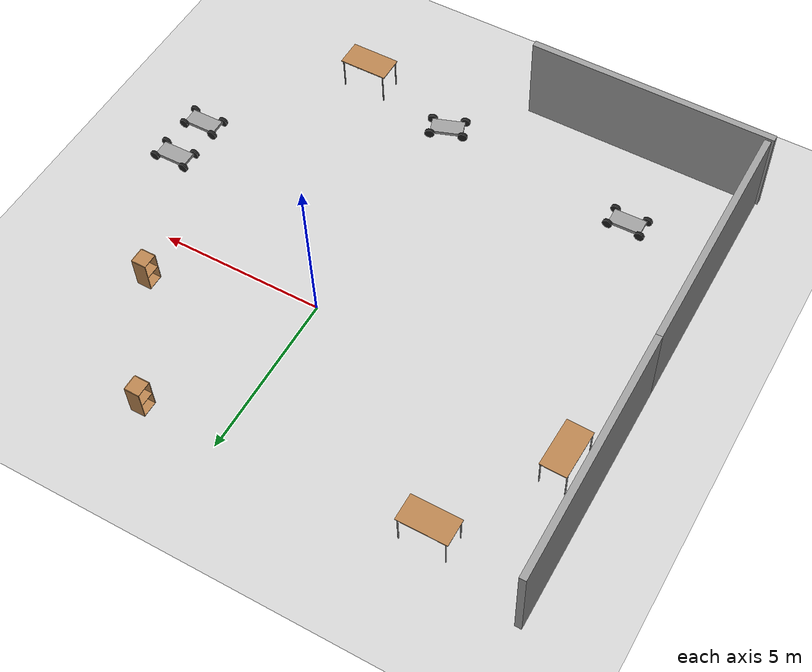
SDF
<sdf version="1.6">
 <world name="default">
  <light name="sun" type="directional">
   <pose>0 0 15 0 -0 0</pose>
   <diffuse>1 1 1 1</diffuse>
   <specular>0.1 0.1 0.1 1</specular>
   <attenuation>
    <range>1000</range>
    <constant>0.9</constant>
    <linear>0.01</linear>
    <quadratic>0.001</quadratic>
   </attenuation>
   <direction>-0.5 0.5 -1</direction>
  </light>
  <model name="ground_plane">
   <static>1</static>
   <link name="link">
    <collision name="collision">
     <geometry><plane><normal>0 0 1</normal><size>100 100</size></plane></geometry>
     <surface><friction><ode><mu>100</mu><mu2>50</mu2></ode></friction></surface>
    </collision>
    <visual name="visual">
     <transparency>1</transparency>
     <cast_shadows>0</cast_shadows>
     <geometry><plane><normal>0 0 1</normal><size>100 100</size></plane></geometry>
     <material>
      <script><uri>file://media/materials/scripts/gazebo.material</uri><name>Gazebo/Grey</name></script>
     </material>
    </visual>
   </link>
  </model>
  <gravity>0 0 -9.8</gravity>
  <magnetic_field>6e-06 2.3e-05 -4.2e-05</magnetic_field>
  <atmosphere type="adiabatic"/>
  <physics name="default_physics" default="0" type="ode">
   <max_step_size>0.001</max_step_size>
   <real_time_factor>1</real_time_factor>
   <real_time_update_rate>1000</real_time_update_rate>
  </physics>
  <scene><ambient>0.4 0.4 0.4 1</ambient><background>0.7 0.7 0.7 1</background><shadows>1</shadows></scene>
  <spherical_coordinates>
   <surface_model>EARTH_WGS84</surface_model>
   <latitude_deg>0</latitude_deg>
   <longitude_deg>0</longitude_deg>
   <elevation>0</elevation>
   <heading_deg>0</heading_deg>
  </spherical_coordinates>
  <model name="grey_wall">
   <static>1</static>
   <link name="link">
    <pose>0 0 1.4 0 -0 0</pose>
    <collision name="collision"><geometry><box><size>7.5 0.2 2.8</size></box></geometry></collision>
    <visual name="visual">
     <cast_shadows>0</cast_shadows>
     <geometry><box><size>7.5 0.2 2.8</size></box></geometry>
     <material>
      <script>
       <uri>model://grey_wall/materials/scripts</uri>
       <uri>model://grey_wall/materials/textures</uri>
       <name>vrc/grey_wall</name>
      </script>
     </material>
    </visual>
   </link>
   <pose>-9.17179 1.83756 0 0 0 -1.56705</pose>
  </model>
  <model name="grey_wall_clone">
   <static>1</static>
   <link name="link">
    <pose>0 0 1.4 0 -0 0</pose>
    <collision name="collision"><geometry><box><size>7.5 0.2 2.8</size></box></geometry></collision>
    <visual name="visual">
     <cast_shadows>0</cast_shadows>
     <geometry><box><size>7.5 0.2 2.8</size></box></geometry>
     <material>
      <script>
       <uri>model://grey_wall/materials/scripts</uri>
       <uri>model://grey_wall/materials/textures</uri>
       <name>vrc/grey_wall</name>
      </script>
     </material>
    </visual>
   </link>
   <pose>-5.53822 -9.42427 -0.01494 0 0 -0.004172</pose>
  </model>
  <model name="grey_wall_clone_clone">
   <static>1</static>
   <link name="link">
    <pose>0 0 1.4 0 -0 0</pose>
    <collision name="collision"><geometry><box><size>7.5 0.2 2.8</size></box></geometry></collision>
    <visual name="visual">
     <cast_shadows>0</cast_shadows>
     <geometry><box><size>7.5 0.2 2.8</size></box></geometry>
     <material>
      <script>
       <uri>model://grey_wall/materials/scripts</uri>
       <uri>model://grey_wall/materials/textures</uri>
       <name>vrc/grey_wall</name>
      </script>
     </material>
    </visual>
   </link>
   <pose>-9.14347 -5.47486 0 0 0 -1.56705</pose>
  </model>
  <model name="cart_front_steer">
   <link name="chassis">
    <pose>0 0 0.15 0 -0 0</pose>
    <inertial>
     <pose>0.1 0 0 0 -0 0</pose>
     <mass>10</mass>
     <inertia>
      <ixx>0.216667</ixx>
      <iyy>0.841667</iyy>
      <izz>1.04167</izz>
      <ixy>0</ixy>
      <ixz>0</ixz>
      <iyz>0</iyz>
     </inertia>
    </inertial>
    <collision name="collision"><geometry><box><size>1 0.5 0.1</size></box></geometry></collision>
    <visual name="visual">
     <geometry><box><size>1 0.5 0.1</size></box></geometry>
     <material>
      <script><uri>file://media/materials/scripts/gazebo.material</uri><name>Gazebo/Grey</name></script>
     </material>
    </visual>
   </link>
   <link name="wheel_front_left">
    <pose>0.5 0.298 0.15 -1.5708 -0.087266 0</pose>
    <inertial>
     <mass>0.5</mass>
     <inertia>
      <ixx>0.00307917</ixx>
      <iyy>0.00307917</iyy>
      <izz>0.005625</izz>
      <ixy>0</ixy>
      <ixz>0</ixz>
      <iyz>0</iyz>
     </inertia>
    </inertial>
    <collision name="collision">
     <geometry><cylinder><radius>0.15</radius><length>0.08</length></cylinder></geometry>
    </collision>
    <visual name="visual">
     <geometry><cylinder><radius>0.15</radius><length>0.08</length></cylinder></geometry>
     <material>
      <script><uri>file://media/materials/scripts/gazebo.material</uri><name>Gazebo/Black</name></script>
     </material>
    </visual>
   </link>
   <joint name="wheel_front_left_steer_spin" type="universal">
    <parent>chassis</parent>
    <child>wheel_front_left</child>
    <axis>
     <xyz>0 -1 0</xyz>
     <limit><lower>-0.610865</lower><upper>0.610865</upper></limit>
     <use_parent_model_frame>0</use_parent_model_frame>
     <dynamics><spring_reference>0</spring_reference><spring_stiffness>0</spring_stiffness></dynamics>
    </axis>
    <axis2>
     <xyz>0 0 1</xyz>
     <use_parent_model_frame>0</use_parent_model_frame>
     <dynamics><spring_reference>0</spring_reference><spring_stiffness>0</spring_stiffness></dynamics>
    </axis2>
   </joint>
   <link name="wheel_front_right">
    <pose>0.5 -0.298 0.15 -1.5708 -0.087266 0</pose>
    <inertial>
     <mass>0.5</mass>
     <inertia>
      <ixx>0.00307917</ixx>
      <iyy>0.00307917</iyy>
      <izz>0.005625</izz>
      <ixy>0</ixy>
      <ixz>0</ixz>
      <iyz>0</iyz>
     </inertia>
    </inertial>
    <collision name="collision">
     <geometry><cylinder><radius>0.15</radius><length>0.08</length></cylinder></geometry>
    </collision>
    <visual name="visual">
     <geometry><cylinder><radius>0.15</radius><length>0.08</length></cylinder></geometry>
     <material>
      <script><uri>file://media/materials/scripts/gazebo.material</uri><name>Gazebo/Black</name></script>
     </material>
    </visual>
   </link>
   <joint name="wheel_front_right_steer_spin" type="universal">
    <parent>chassis</parent>
    <child>wheel_front_right</child>
    <axis>
     <xyz>0 -1 0</xyz>
     <limit><lower>-0.610865</lower><upper>0.610865</upper></limit>
     <use_parent_model_frame>0</use_parent_model_frame>
     <dynamics><spring_reference>0</spring_reference><spring_stiffness>0</spring_stiffness></dynamics>
    </axis>
    <axis2>
     <xyz>0 0 1</xyz>
     <use_parent_model_frame>0</use_parent_model_frame>
     <dynamics><spring_reference>0</spring_reference><spring_stiffness>0</spring_stiffness></dynamics>
    </axis2>
   </joint>
   <link name="wheel_rear_left">
    <pose>-0.5 0.298 0.15 -1.5708 0 0</pose>
    <inertial>
     <mass>0.5</mass>
     <inertia>
      <ixx>0.00307917</ixx>
      <iyy>0.00307917</iyy>
      <izz>0.005625</izz>
      <ixy>0</ixy>
      <ixz>0</ixz>
      <iyz>0</iyz>
     </inertia>
    </inertial>
    <collision name="collision">
     <geometry><cylinder><radius>0.15</radius><length>0.08</length></cylinder></geometry>
    </collision>
    <visual name="visual">
     <geometry><cylinder><radius>0.15</radius><length>0.08</length></cylinder></geometry>
     <material>
      <script><uri>file://media/materials/scripts/gazebo.material</uri><name>Gazebo/Black</name></script>
     </material>
    </visual>
   </link>
   <joint name="wheel_rear_left_spin" type="revolute">
    <parent>chassis</parent>
    <child>wheel_rear_left</child>
    <axis>
     <xyz>0 0 1</xyz>
     <use_parent_model_frame>0</use_parent_model_frame>
     <limit><lower>-1e+16</lower><upper>1e+16</upper></limit>
     <dynamics><spring_reference>0</spring_reference><spring_stiffness>0</spring_stiffness></dynamics>
    </axis>
   </joint>
   <link name="wheel_rear_right">
    <pose>-0.5 -0.298 0.15 -1.5708 0 0</pose>
    <inertial>
     <mass>0.5</mass>
     <inertia>
      <ixx>0.00307917</ixx>
      <iyy>0.00307917</iyy>
      <izz>0.005625</izz>
      <ixy>0</ixy>
      <ixz>0</ixz>
      <iyz>0</iyz>
     </inertia>
    </inertial>
    <collision name="collision">
     <geometry><cylinder><radius>0.15</radius><length>0.08</length></cylinder></geometry>
    </collision>
    <visual name="visual">
     <geometry><cylinder><radius>0.15</radius><length>0.08</length></cylinder></geometry>
     <material>
      <script><uri>file://media/materials/scripts/gazebo.material</uri><name>Gazebo/Black</name></script>
     </material>
    </visual>
   </link>
   <joint name="wheel_rear_right_spin" type="revolute">
    <parent>chassis</parent>
    <child>wheel_rear_right</child>
    <axis>
     <xyz>0 0 1</xyz>
     <use_parent_model_frame>0</use_parent_model_frame>
     <limit><lower>-1e+16</lower><upper>1e+16</upper></limit>
     <dynamics><spring_reference>0</spring_reference><spring_stiffness>0</spring_stiffness></dynamics>
    </axis>
   </joint>
   <pose>-0.026956 -7.4091 0.005002 0 -1e-06 -2.7964</pose>
  </model>
  <model name="table">
   <static>1</static>
   <link name="link">
    <collision name="surface">
     <pose>0 0 1 0 -0 0</pose>
     <geometry><box><size>1.5 0.8 0.03</size></box></geometry>
     <surface><friction><ode><mu>0.6</mu><mu2>0.6</mu2></ode></friction></surface>
    </collision>
    <visual name="visual1">
     <pose>0 0 1 0 -0 0</pose>
     <geometry><box><size>1.5 0.8 0.03</size></box></geometry>
     <material>
      <script><uri>file://media/materials/scripts/gazebo.material</uri><name>Gazebo/Wood</name></script>
     </material>
    </visual>
    <collision name="front_left_leg">
     <pose>0.68 0.38 0.5 0 -0 0</pose>
     <geometry><cylinder><radius>0.02</radius><length>1</length></cylinder></geometry>
    </collision>
    <visual name="front_left_leg">
     <pose>0.68 0.38 0.5 0 -0 0</pose>
     <geometry><cylinder><radius>0.02</radius><length>1</length></cylinder></geometry>
     <material>
      <script><uri>file://media/materials/scripts/gazebo.material</uri><name>Gazebo/Grey</name></script>
     </material>
    </visual>
    <collision name="front_right_leg">
     <pose>0.68 -0.38 0.5 0 -0 0</pose>
     <geometry><cylinder><radius>0.02</radius><length>1</length></cylinder></geometry>
    </collision>
    <visual name="front_right_leg">
     <pose>0.68 -0.38 0.5 0 -0 0</pose>
     <geometry><cylinder><radius>0.02</radius><length>1</length></cylinder></geometry>
     <material>
      <script><uri>file://media/materials/scripts/gazebo.material</uri><name>Gazebo/Grey</name></script>
     </material>
    </visual>
    <collision name="back_right_leg">
     <pose>-0.68 -0.38 0.5 0 -0 0</pose>
     <geometry><cylinder><radius>0.02</radius><length>1</length></cylinder></geometry>
    </collision>
    <visual name="back_right_leg">
     <pose>-0.68 -0.38 0.5 0 -0 0</pose>
     <geometry><cylinder><radius>0.02</radius><length>1</length></cylinder></geometry>
     <material>
      <script><uri>file://media/materials/scripts/gazebo.material</uri><name>Gazebo/Grey</name></script>
     </material>
    </visual>
    <collision name="back_left_leg">
     <pose>-0.68 0.38 0.5 0 -0 0</pose>
     <geometry><cylinder><radius>0.02</radius><length>1</length></cylinder></geometry>
    </collision>
    <visual name="back_left_leg">
     <pose>-0.68 0.38 0.5 0 -0 0</pose>
     <geometry><cylinder><radius>0.02</radius><length>1</length></cylinder></geometry>
     <material>
      <script><uri>file://media/materials/scripts/gazebo.material</uri><name>Gazebo/Grey</name></script>
     </material>
    </visual>
   </link>
   <pose>2.98257 -7.93894 0 0 -0 0</pose>
  </model>
  <model name="cabinet">
   <static>1</static>
   <link name="cabinet_bottom_plate">
    <inertial>
     <pose>0 0 -1 0 -0 0</pose>
     <inertia><ixx>2.05</ixx><ixy>0</ixy><ixz>0</ixz><iyy>2.05</iyy><iyz>0</iyz><izz>2.05</izz></inertia>
     <mass>25</mass>
    </inertial>
    <collision name="cabinet_bottom_plate_geom">
     <pose>0 0 0.01 0 -0 0</pose>
     <geometry><box><size>0.45 0.45 0.02</size></box></geometry>
    </collision>
    <visual name="cabinet_bottom_plate_geom_visual">
     <pose>0 0 0.01 0 -0 0</pose>
     <geometry><box><size>0.45 0.45 0.02</size></box></geometry>
     <material>
      <script><uri>file://media/materials/scripts/gazebo.material</uri><name>Gazebo/Wood</name></script>
     </material>
    </visual>
    <collision name="cabinet_bottom_plate_geom_cabinet_back_plate">
     <pose>0.235 0 0.51 0 -0 0</pose>
     <geometry><box><size>0.02 0.45 1.02</size></box></geometry>
    </collision>
    <visual name="cabinet_bottom_plate_geom_cabinet_back_plate_visual">
     <pose>0.235 0 0.51 0 -0 0</pose>
     <geometry><box><size>0.02 0.45 1.02</size></box></geometry>
     <material>
      <script><uri>file://media/materials/scripts/gazebo.material</uri><name>Gazebo/Wood</name></script>
     </material>
    </visual>
    <collision name="cabinet_bottom_plate_geom_cabinet_left_plate">
     <pose>0 0.235 0.51 0 -0 0</pose>
     <geometry><box><size>0.45 0.02 1.02</size></box></geometry>
    </collision>
    <visual name="cabinet_bottom_plate_geom_cabinet_left_plate_visual">
     <pose>0 0.235 0.51 0 -0 0</pose>
     <geometry><box><size>0.45 0.02 1.02</size></box></geometry>
     <material>
      <script><uri>file://media/materials/scripts/gazebo.material</uri><name>Gazebo/Wood</name></script>
     </material>
    </visual>
    <collision name="cabinet_bottom_plate_geom_cabinet_middle_plate">
     <pose>0 0 0.51 0 -0 0</pose>
     <geometry><box><size>0.45 0.45 0.02</size></box></geometry>
    </collision>
    <visual name="cabinet_bottom_plate_geom_cabinet_middle_plate_visual">
     <pose>0 0 0.51 0 -0 0</pose>
     <geometry><box><size>0.45 0.45 0.02</size></box></geometry>
     <material>
      <script><uri>file://media/materials/scripts/gazebo.material</uri><name>Gazebo/Wood</name></script>
     </material>
    </visual>
    <collision name="cabinet_bottom_plate_geom_cabinet_right_plate">
     <pose>0 -0.235 0.51 0 -0 0</pose>
     <geometry><box><size>0.45 0.02 1.02</size></box></geometry>
    </collision>
    <visual name="cabinet_bottom_plate_geom_cabinet_right_plate_visual">
     <pose>0 -0.235 0.51 0 -0 0</pose>
     <geometry><box><size>0.45 0.02 1.02</size></box></geometry>
     <material>
      <script><uri>file://media/materials/scripts/gazebo.material</uri><name>Gazebo/Wood</name></script>
     </material>
    </visual>
    <collision name="cabinet_bottom_plate_geom_cabinet_top_plate">
     <pose>0 0 1.01 0 -0 0</pose>
     <geometry><box><size>0.45 0.45 0.02</size></box></geometry>
    </collision>
    <visual name="cabinet_bottom_plate_geom_cabinet_top_plate_visual">
     <pose>0 0 1.01 0 -0 0</pose>
     <geometry><box><size>0.45 0.45 0.02</size></box></geometry>
     <material>
      <script><uri>file://media/materials/scripts/gazebo.material</uri><name>Gazebo/Wood</name></script>
     </material>
    </visual>
   </link>
   <pose>2.34014 4.90439 0 0 -0 0</pose>
  </model>
  <model name="cart_front_steer_0">
   <link name="chassis">
    <pose>0 0 0.15 0 -0 0</pose>
    <inertial>
     <pose>0.1 0 0 0 -0 0</pose>
     <mass>10</mass>
     <inertia>
      <ixx>0.216667</ixx>
      <iyy>0.841667</iyy>
      <izz>1.04167</izz>
      <ixy>0</ixy>
      <ixz>0</ixz>
      <iyz>0</iyz>
     </inertia>
    </inertial>
    <collision name="collision"><geometry><box><size>1 0.5 0.1</size></box></geometry></collision>
    <visual name="visual">
     <geometry><box><size>1 0.5 0.1</size></box></geometry>
     <material>
      <script><uri>file://media/materials/scripts/gazebo.material</uri><name>Gazebo/Grey</name></script>
     </material>
    </visual>
   </link>
   <link name="wheel_front_left">
    <pose>0.5 0.298 0.15 -1.5708 -0.087266 0</pose>
    <inertial>
     <mass>0.5</mass>
     <inertia>
      <ixx>0.00307917</ixx>
      <iyy>0.00307917</iyy>
      <izz>0.005625</izz>
      <ixy>0</ixy>
      <ixz>0</ixz>
      <iyz>0</iyz>
     </inertia>
    </inertial>
    <collision name="collision">
     <geometry><cylinder><radius>0.15</radius><length>0.08</length></cylinder></geometry>
    </collision>
    <visual name="visual">
     <geometry><cylinder><radius>0.15</radius><length>0.08</length></cylinder></geometry>
     <material>
      <script><uri>file://media/materials/scripts/gazebo.material</uri><name>Gazebo/Black</name></script>
     </material>
    </visual>
   </link>
   <joint name="wheel_front_left_steer_spin" type="universal">
    <parent>chassis</parent>
    <child>wheel_front_left</child>
    <axis>
     <xyz>0 -1 0</xyz>
     <limit><lower>-0.610865</lower><upper>0.610865</upper></limit>
     <use_parent_model_frame>0</use_parent_model_frame>
     <dynamics><spring_reference>0</spring_reference><spring_stiffness>0</spring_stiffness></dynamics>
    </axis>
    <axis2>
     <xyz>0 0 1</xyz>
     <use_parent_model_frame>0</use_parent_model_frame>
     <dynamics><spring_reference>0</spring_reference><spring_stiffness>0</spring_stiffness></dynamics>
    </axis2>
   </joint>
   <link name="wheel_front_right">
    <pose>0.5 -0.298 0.15 -1.5708 -0.087266 0</pose>
    <inertial>
     <mass>0.5</mass>
     <inertia>
      <ixx>0.00307917</ixx>
      <iyy>0.00307917</iyy>
      <izz>0.005625</izz>
      <ixy>0</ixy>
      <ixz>0</ixz>
      <iyz>0</iyz>
     </inertia>
    </inertial>
    <collision name="collision">
     <geometry><cylinder><radius>0.15</radius><length>0.08</length></cylinder></geometry>
    </collision>
    <visual name="visual">
     <geometry><cylinder><radius>0.15</radius><length>0.08</length></cylinder></geometry>
     <material>
      <script><uri>file://media/materials/scripts/gazebo.material</uri><name>Gazebo/Black</name></script>
     </material>
    </visual>
   </link>
   <joint name="wheel_front_right_steer_spin" type="universal">
    <parent>chassis</parent>
    <child>wheel_front_right</child>
    <axis>
     <xyz>0 -1 0</xyz>
     <limit><lower>-0.610865</lower><upper>0.610865</upper></limit>
     <use_parent_model_frame>0</use_parent_model_frame>
     <dynamics><spring_reference>0</spring_reference><spring_stiffness>0</spring_stiffness></dynamics>
    </axis>
    <axis2>
     <xyz>0 0 1</xyz>
     <use_parent_model_frame>0</use_parent_model_frame>
     <dynamics><spring_reference>0</spring_reference><spring_stiffness>0</spring_stiffness></dynamics>
    </axis2>
   </joint>
   <link name="wheel_rear_left">
    <pose>-0.5 0.298 0.15 -1.5708 0 0</pose>
    <inertial>
     <mass>0.5</mass>
     <inertia>
      <ixx>0.00307917</ixx>
      <iyy>0.00307917</iyy>
      <izz>0.005625</izz>
      <ixy>0</ixy>
      <ixz>0</ixz>
      <iyz>0</iyz>
     </inertia>
    </inertial>
    <collision name="collision">
     <geometry><cylinder><radius>0.15</radius><length>0.08</length></cylinder></geometry>
    </collision>
    <visual name="visual">
     <geometry><cylinder><radius>0.15</radius><length>0.08</length></cylinder></geometry>
     <material>
      <script><uri>file://media/materials/scripts/gazebo.material</uri><name>Gazebo/Black</name></script>
     </material>
    </visual>
   </link>
   <joint name="wheel_rear_left_spin" type="revolute">
    <parent>chassis</parent>
    <child>wheel_rear_left</child>
    <axis>
     <xyz>0 0 1</xyz>
     <use_parent_model_frame>0</use_parent_model_frame>
     <limit><lower>-1e+16</lower><upper>1e+16</upper></limit>
     <dynamics><spring_reference>0</spring_reference><spring_stiffness>0</spring_stiffness></dynamics>
    </axis>
   </joint>
   <link name="wheel_rear_right">
    <pose>-0.5 -0.298 0.15 -1.5708 0 0</pose>
    <inertial>
     <mass>0.5</mass>
     <inertia>
      <ixx>0.00307917</ixx>
      <iyy>0.00307917</iyy>
      <izz>0.005625</izz>
      <ixy>0</ixy>
      <ixz>0</ixz>
      <iyz>0</iyz>
     </inertia>
    </inertial>
    <collision name="collision">
     <geometry><cylinder><radius>0.15</radius><length>0.08</length></cylinder></geometry>
    </collision>
    <visual name="visual">
     <geometry><cylinder><radius>0.15</radius><length>0.08</length></cylinder></geometry>
     <material>
      <script><uri>file://media/materials/scripts/gazebo.material</uri><name>Gazebo/Black</name></script>
     </material>
    </visual>
   </link>
   <joint name="wheel_rear_right_spin" type="revolute">
    <parent>chassis</parent>
    <child>wheel_rear_right</child>
    <axis>
     <xyz>0 0 1</xyz>
     <use_parent_model_frame>0</use_parent_model_frame>
     <limit><lower>-1e+16</lower><upper>1e+16</upper></limit>
     <dynamics><spring_reference>0</spring_reference><spring_stiffness>0</spring_stiffness></dynamics>
    </axis>
   </joint>
   <pose>-6.30007 -6.75678 0.004998 1.4e-05 -1e-06 0.020756</pose>
  </model>
  <model name="table_0">
   <static>1</static>
   <link name="link">
    <collision name="surface">
     <pose>0 0 1 0 -0 0</pose>
     <geometry><box><size>1.5 0.8 0.03</size></box></geometry>
     <surface><friction><ode><mu>0.6</mu><mu2>0.6</mu2></ode></friction></surface>
    </collision>
    <visual name="visual1">
     <pose>0 0 1 0 -0 0</pose>
     <geometry><box><size>1.5 0.8 0.03</size></box></geometry>
     <material>
      <script><uri>file://media/materials/scripts/gazebo.material</uri><name>Gazebo/Wood</name></script>
     </material>
    </visual>
    <collision name="front_left_leg">
     <pose>0.68 0.38 0.5 0 -0 0</pose>
     <geometry><cylinder><radius>0.02</radius><length>1</length></cylinder></geometry>
    </collision>
    <visual name="front_left_leg">
     <pose>0.68 0.38 0.5 0 -0 0</pose>
     <geometry><cylinder><radius>0.02</radius><length>1</length></cylinder></geometry>
     <material>
      <script><uri>file://media/materials/scripts/gazebo.material</uri><name>Gazebo/Grey</name></script>
     </material>
    </visual>
    <collision name="front_right_leg">
     <pose>0.68 -0.38 0.5 0 -0 0</pose>
     <geometry><cylinder><radius>0.02</radius><length>1</length></cylinder></geometry>
    </collision>
    <visual name="front_right_leg">
     <pose>0.68 -0.38 0.5 0 -0 0</pose>
     <geometry><cylinder><radius>0.02</radius><length>1</length></cylinder></geometry>
     <material>
      <script><uri>file://media/materials/scripts/gazebo.material</uri><name>Gazebo/Grey</name></script>
     </material>
    </visual>
    <collision name="back_right_leg">
     <pose>-0.68 -0.38 0.5 0 -0 0</pose>
     <geometry><cylinder><radius>0.02</radius><length>1</length></cylinder></geometry>
    </collision>
    <visual name="back_right_leg">
     <pose>-0.68 -0.38 0.5 0 -0 0</pose>
     <geometry><cylinder><radius>0.02</radius><length>1</length></cylinder></geometry>
     <material>
      <script><uri>file://media/materials/scripts/gazebo.material</uri><name>Gazebo/Grey</name></script>
     </material>
    </visual>
    <collision name="back_left_leg">
     <pose>-0.68 0.38 0.5 0 -0 0</pose>
     <geometry><cylinder><radius>0.02</radius><length>1</length></cylinder></geometry>
    </collision>
    <visual name="back_left_leg">
     <pose>-0.68 0.38 0.5 0 -0 0</pose>
     <geometry><cylinder><radius>0.02</radius><length>1</length></cylinder></geometry>
     <material>
      <script><uri>file://media/materials/scripts/gazebo.material</uri><name>Gazebo/Grey</name></script>
     </material>
    </visual>
   </link>
   <pose>-8.22277 1.14779 0 0 0 -1.59718</pose>
  </model>
  <model name="cabinet_0">
   <static>1</static>
   <link name="cabinet_bottom_plate">
    <inertial>
     <pose>0 0 -1 0 -0 0</pose>
     <inertia><ixx>2.05</ixx><ixy>0</ixy><ixz>0</ixz><iyy>2.05</iyy><iyz>0</iyz><izz>2.05</izz></inertia>
     <mass>25</mass>
    </inertial>
    <collision name="cabinet_bottom_plate_geom">
     <pose>0 0 0.01 0 -0 0</pose>
     <geometry><box><size>0.45 0.45 0.02</size></box></geometry>
    </collision>
    <visual name="cabinet_bottom_plate_geom_visual">
     <pose>0 0 0.01 0 -0 0</pose>
     <geometry><box><size>0.45 0.45 0.02</size></box></geometry>
     <material>
      <script><uri>file://media/materials/scripts/gazebo.material</uri><name>Gazebo/Wood</name></script>
     </material>
    </visual>
    <collision name="cabinet_bottom_plate_geom_cabinet_back_plate">
     <pose>0.235 0 0.51 0 -0 0</pose>
     <geometry><box><size>0.02 0.45 1.02</size></box></geometry>
    </collision>
    <visual name="cabinet_bottom_plate_geom_cabinet_back_plate_visual">
     <pose>0.235 0 0.51 0 -0 0</pose>
     <geometry><box><size>0.02 0.45 1.02</size></box></geometry>
     <material>
      <script><uri>file://media/materials/scripts/gazebo.material</uri><name>Gazebo/Wood</name></script>
     </material>
    </visual>
    <collision name="cabinet_bottom_plate_geom_cabinet_left_plate">
     <pose>0 0.235 0.51 0 -0 0</pose>
     <geometry><box><size>0.45 0.02 1.02</size></box></geometry>
    </collision>
    <visual name="cabinet_bottom_plate_geom_cabinet_left_plate_visual">
     <pose>0 0.235 0.51 0 -0 0</pose>
     <geometry><box><size>0.45 0.02 1.02</size></box></geometry>
     <material>
      <script><uri>file://media/materials/scripts/gazebo.material</uri><name>Gazebo/Wood</name></script>
     </material>
    </visual>
    <collision name="cabinet_bottom_plate_geom_cabinet_middle_plate">
     <pose>0 0 0.51 0 -0 0</pose>
     <geometry><box><size>0.45 0.45 0.02</size></box></geometry>
    </collision>
    <visual name="cabinet_bottom_plate_geom_cabinet_middle_plate_visual">
     <pose>0 0 0.51 0 -0 0</pose>
     <geometry><box><size>0.45 0.45 0.02</size></box></geometry>
     <material>
      <script><uri>file://media/materials/scripts/gazebo.material</uri><name>Gazebo/Wood</name></script>
     </material>
    </visual>
    <collision name="cabinet_bottom_plate_geom_cabinet_right_plate">
     <pose>0 -0.235 0.51 0 -0 0</pose>
     <geometry><box><size>0.45 0.02 1.02</size></box></geometry>
    </collision>
    <visual name="cabinet_bottom_plate_geom_cabinet_right_plate_visual">
     <pose>0 -0.235 0.51 0 -0 0</pose>
     <geometry><box><size>0.45 0.02 1.02</size></box></geometry>
     <material>
      <script><uri>file://media/materials/scripts/gazebo.material</uri><name>Gazebo/Wood</name></script>
     </material>
    </visual>
    <collision name="cabinet_bottom_plate_geom_cabinet_top_plate">
     <pose>0 0 1.01 0 -0 0</pose>
     <geometry><box><size>0.45 0.45 0.02</size></box></geometry>
    </collision>
    <visual name="cabinet_bottom_plate_geom_cabinet_top_plate_visual">
     <pose>0 0 1.01 0 -0 0</pose>
     <geometry><box><size>0.45 0.45 0.02</size></box></geometry>
     <material>
      <script><uri>file://media/materials/scripts/gazebo.material</uri><name>Gazebo/Wood</name></script>
     </material>
    </visual>
   </link>
   <pose>4.60855 1.46945 0 0 -0 0</pose>
  </model>
  <model name="cart_front_steer_1">
   <link name="chassis">
    <pose>0 0 0.15 0 -0 0</pose>
    <inertial>
     <pose>0.1 0 0 0 -0 0</pose>
     <mass>10</mass>
     <inertia>
      <ixx>0.216667</ixx>
      <iyy>0.841667</iyy>
      <izz>1.04167</izz>
      <ixy>0</ixy>
      <ixz>0</ixz>
      <iyz>0</iyz>
     </inertia>
    </inertial>
    <collision name="collision"><geometry><box><size>1 0.5 0.1</size></box></geometry></collision>
    <visual name="visual">
     <geometry><box><size>1 0.5 0.1</size></box></geometry>
     <material>
      <script><uri>file://media/materials/scripts/gazebo.material</uri><name>Gazebo/Grey</name></script>
     </material>
    </visual>
   </link>
   <link name="wheel_front_left">
    <pose>0.5 0.298 0.15 -1.5708 -0.087266 0</pose>
    <inertial>
     <mass>0.5</mass>
     <inertia>
      <ixx>0.00307917</ixx>
      <iyy>0.00307917</iyy>
      <izz>0.005625</izz>
      <ixy>0</ixy>
      <ixz>0</ixz>
      <iyz>0</iyz>
     </inertia>
    </inertial>
    <collision name="collision">
     <geometry><cylinder><radius>0.15</radius><length>0.08</length></cylinder></geometry>
    </collision>
    <visual name="visual">
     <geometry><cylinder><radius>0.15</radius><length>0.08</length></cylinder></geometry>
     <material>
      <script><uri>file://media/materials/scripts/gazebo.material</uri><name>Gazebo/Black</name></script>
     </material>
    </visual>
   </link>
   <joint name="wheel_front_left_steer_spin" type="universal">
    <parent>chassis</parent>
    <child>wheel_front_left</child>
    <axis>
     <xyz>0 -1 0</xyz>
     <limit><lower>-0.610865</lower><upper>0.610865</upper></limit>
     <use_parent_model_frame>0</use_parent_model_frame>
     <dynamics><spring_reference>0</spring_reference><spring_stiffness>0</spring_stiffness></dynamics>
    </axis>
    <axis2>
     <xyz>0 0 1</xyz>
     <use_parent_model_frame>0</use_parent_model_frame>
     <dynamics><spring_reference>0</spring_reference><spring_stiffness>0</spring_stiffness></dynamics>
    </axis2>
   </joint>
   <link name="wheel_front_right">
    <pose>0.5 -0.298 0.15 -1.5708 -0.087266 0</pose>
    <inertial>
     <mass>0.5</mass>
     <inertia>
      <ixx>0.00307917</ixx>
      <iyy>0.00307917</iyy>
      <izz>0.005625</izz>
      <ixy>0</ixy>
      <ixz>0</ixz>
      <iyz>0</iyz>
     </inertia>
    </inertial>
    <collision name="collision">
     <geometry><cylinder><radius>0.15</radius><length>0.08</length></cylinder></geometry>
    </collision>
    <visual name="visual">
     <geometry><cylinder><radius>0.15</radius><length>0.08</length></cylinder></geometry>
     <material>
      <script><uri>file://media/materials/scripts/gazebo.material</uri><name>Gazebo/Black</name></script>
     </material>
    </visual>
   </link>
   <joint name="wheel_front_right_steer_spin" type="universal">
    <parent>chassis</parent>
    <child>wheel_front_right</child>
    <axis>
     <xyz>0 -1 0</xyz>
     <limit><lower>-0.610865</lower><upper>0.610865</upper></limit>
     <use_parent_model_frame>0</use_parent_model_frame>
     <dynamics><spring_reference>0</spring_reference><spring_stiffness>0</spring_stiffness></dynamics>
    </axis>
    <axis2>
     <xyz>0 0 1</xyz>
     <use_parent_model_frame>0</use_parent_model_frame>
     <dynamics><spring_reference>0</spring_reference><spring_stiffness>0</spring_stiffness></dynamics>
    </axis2>
   </joint>
   <link name="wheel_rear_left">
    <pose>-0.5 0.298 0.15 -1.5708 0 0</pose>
    <inertial>
     <mass>0.5</mass>
     <inertia>
      <ixx>0.00307917</ixx>
      <iyy>0.00307917</iyy>
      <izz>0.005625</izz>
      <ixy>0</ixy>
      <ixz>0</ixz>
      <iyz>0</iyz>
     </inertia>
    </inertial>
    <collision name="collision">
     <geometry><cylinder><radius>0.15</radius><length>0.08</length></cylinder></geometry>
    </collision>
    <visual name="visual">
     <geometry><cylinder><radius>0.15</radius><length>0.08</length></cylinder></geometry>
     <material>
      <script><uri>file://media/materials/scripts/gazebo.material</uri><name>Gazebo/Black</name></script>
     </material>
    </visual>
   </link>
   <joint name="wheel_rear_left_spin" type="revolute">
    <parent>chassis</parent>
    <child>wheel_rear_left</child>
    <axis>
     <xyz>0 0 1</xyz>
     <use_parent_model_frame>0</use_parent_model_frame>
     <limit><lower>-1e+16</lower><upper>1e+16</upper></limit>
     <dynamics><spring_reference>0</spring_reference><spring_stiffness>0</spring_stiffness></dynamics>
    </axis>
   </joint>
   <link name="wheel_rear_right">
    <pose>-0.5 -0.298 0.15 -1.5708 0 0</pose>
    <inertial>
     <mass>0.5</mass>
     <inertia>
      <ixx>0.00307917</ixx>
      <iyy>0.00307917</iyy>
      <izz>0.005625</izz>
      <ixy>0</ixy>
      <ixz>0</ixz>
      <iyz>0</iyz>
     </inertia>
    </inertial>
    <collision name="collision">
     <geometry><cylinder><radius>0.15</radius><length>0.08</length></cylinder></geometry>
    </collision>
    <visual name="visual">
     <geometry><cylinder><radius>0.15</radius><length>0.08</length></cylinder></geometry>
     <material>
      <script><uri>file://media/materials/scripts/gazebo.material</uri><name>Gazebo/Black</name></script>
     </material>
    </visual>
   </link>
   <joint name="wheel_rear_right_spin" type="revolute">
    <parent>chassis</parent>
    <child>wheel_rear_right</child>
    <axis>
     <xyz>0 0 1</xyz>
     <use_parent_model_frame>0</use_parent_model_frame>
     <limit><lower>-1e+16</lower><upper>1e+16</upper></limit>
     <dynamics><spring_reference>0</spring_reference><spring_stiffness>0</spring_stiffness></dynamics>
    </axis>
   </joint>
   <pose>6.54935 -2.56384 0.004992 -2.7e-05 -0 0.010456</pose>
  </model>
  <model name="cart_front_steer_2">
   <link name="chassis">
    <pose>0 0 0.15 0 -0 0</pose>
    <inertial>
     <pose>0.1 0 0 0 -0 0</pose>
     <mass>10</mass>
     <inertia>
      <ixx>0.216667</ixx>
      <iyy>0.841667</iyy>
      <izz>1.04167</izz>
      <ixy>0</ixy>
      <ixz>0</ixz>
      <iyz>0</iyz>
     </inertia>
    </inertial>
    <collision name="collision"><geometry><box><size>1 0.5 0.1</size></box></geometry></collision>
    <visual name="visual">
     <geometry><box><size>1 0.5 0.1</size></box></geometry>
     <material>
      <script><uri>file://media/materials/scripts/gazebo.material</uri><name>Gazebo/Grey</name></script>
     </material>
    </visual>
   </link>
   <link name="wheel_front_left">
    <pose>0.5 0.298 0.15 -1.5708 -0.087266 0</pose>
    <inertial>
     <mass>0.5</mass>
     <inertia>
      <ixx>0.00307917</ixx>
      <iyy>0.00307917</iyy>
      <izz>0.005625</izz>
      <ixy>0</ixy>
      <ixz>0</ixz>
      <iyz>0</iyz>
     </inertia>
    </inertial>
    <collision name="collision">
     <geometry><cylinder><radius>0.15</radius><length>0.08</length></cylinder></geometry>
    </collision>
    <visual name="visual">
     <geometry><cylinder><radius>0.15</radius><length>0.08</length></cylinder></geometry>
     <material>
      <script><uri>file://media/materials/scripts/gazebo.material</uri><name>Gazebo/Black</name></script>
     </material>
    </visual>
   </link>
   <joint name="wheel_front_left_steer_spin" type="universal">
    <parent>chassis</parent>
    <child>wheel_front_left</child>
    <axis>
     <xyz>0 -1 0</xyz>
     <limit><lower>-0.610865</lower><upper>0.610865</upper></limit>
     <use_parent_model_frame>0</use_parent_model_frame>
     <dynamics><spring_reference>0</spring_reference><spring_stiffness>0</spring_stiffness></dynamics>
    </axis>
    <axis2>
     <xyz>0 0 1</xyz>
     <use_parent_model_frame>0</use_parent_model_frame>
     <dynamics><spring_reference>0</spring_reference><spring_stiffness>0</spring_stiffness></dynamics>
    </axis2>
   </joint>
   <link name="wheel_front_right">
    <pose>0.5 -0.298 0.15 -1.5708 -0.087266 0</pose>
    <inertial>
     <mass>0.5</mass>
     <inertia>
      <ixx>0.00307917</ixx>
      <iyy>0.00307917</iyy>
      <izz>0.005625</izz>
      <ixy>0</ixy>
      <ixz>0</ixz>
      <iyz>0</iyz>
     </inertia>
    </inertial>
    <collision name="collision">
     <geometry><cylinder><radius>0.15</radius><length>0.08</length></cylinder></geometry>
    </collision>
    <visual name="visual">
     <geometry><cylinder><radius>0.15</radius><length>0.08</length></cylinder></geometry>
     <material>
      <script><uri>file://media/materials/scripts/gazebo.material</uri><name>Gazebo/Black</name></script>
     </material>
    </visual>
   </link>
   <joint name="wheel_front_right_steer_spin" type="universal">
    <parent>chassis</parent>
    <child>wheel_front_right</child>
    <axis>
     <xyz>0 -1 0</xyz>
     <limit><lower>-0.610865</lower><upper>0.610865</upper></limit>
     <use_parent_model_frame>0</use_parent_model_frame>
     <dynamics><spring_reference>0</spring_reference><spring_stiffness>0</spring_stiffness></dynamics>
    </axis>
    <axis2>
     <xyz>0 0 1</xyz>
     <use_parent_model_frame>0</use_parent_model_frame>
     <dynamics><spring_reference>0</spring_reference><spring_stiffness>0</spring_stiffness></dynamics>
    </axis2>
   </joint>
   <link name="wheel_rear_left">
    <pose>-0.5 0.298 0.15 -1.5708 0 0</pose>
    <inertial>
     <mass>0.5</mass>
     <inertia>
      <ixx>0.00307917</ixx>
      <iyy>0.00307917</iyy>
      <izz>0.005625</izz>
      <ixy>0</ixy>
      <ixz>0</ixz>
      <iyz>0</iyz>
     </inertia>
    </inertial>
    <collision name="collision">
     <geometry><cylinder><radius>0.15</radius><length>0.08</length></cylinder></geometry>
    </collision>
    <visual name="visual">
     <geometry><cylinder><radius>0.15</radius><length>0.08</length></cylinder></geometry>
     <material>
      <script><uri>file://media/materials/scripts/gazebo.material</uri><name>Gazebo/Black</name></script>
     </material>
    </visual>
   </link>
   <joint name="wheel_rear_left_spin" type="revolute">
    <parent>chassis</parent>
    <child>wheel_rear_left</child>
    <axis>
     <xyz>0 0 1</xyz>
     <use_parent_model_frame>0</use_parent_model_frame>
     <limit><lower>-1e+16</lower><upper>1e+16</upper></limit>
     <dynamics><spring_reference>0</spring_reference><spring_stiffness>0</spring_stiffness></dynamics>
    </axis>
   </joint>
   <link name="wheel_rear_right">
    <pose>-0.5 -0.298 0.15 -1.5708 0 0</pose>
    <inertial>
     <mass>0.5</mass>
     <inertia>
      <ixx>0.00307917</ixx>
      <iyy>0.00307917</iyy>
      <izz>0.005625</izz>
      <ixy>0</ixy>
      <ixz>0</ixz>
      <iyz>0</iyz>
     </inertia>
    </inertial>
    <collision name="collision">
     <geometry><cylinder><radius>0.15</radius><length>0.08</length></cylinder></geometry>
    </collision>
    <visual name="visual">
     <geometry><cylinder><radius>0.15</radius><length>0.08</length></cylinder></geometry>
     <material>
      <script><uri>file://media/materials/scripts/gazebo.material</uri><name>Gazebo/Black</name></script>
     </material>
    </visual>
   </link>
   <joint name="wheel_rear_right_spin" type="revolute">
    <parent>chassis</parent>
    <child>wheel_rear_right</child>
    <axis>
     <xyz>0 0 1</xyz>
     <use_parent_model_frame>0</use_parent_model_frame>
     <limit><lower>-1e+16</lower><upper>1e+16</upper></limit>
     <dynamics><spring_reference>0</spring_reference><spring_stiffness>0</spring_stiffness></dynamics>
    </axis>
   </joint>
   <pose>6.51806 -4.0284 0.004992 -2.6e-05 -0 0.009452</pose>
  </model>
  <model name="table_1">
   <static>1</static>
   <link name="link">
    <collision name="surface">
     <pose>0 0 1 0 -0 0</pose>
     <geometry><box><size>1.5 0.8 0.03</size></box></geometry>
     <surface><friction><ode><mu>0.6</mu><mu2>0.6</mu2></ode></friction></surface>
    </collision>
    <visual name="visual1">
     <pose>0 0 1 0 -0 0</pose>
     <geometry><box><size>1.5 0.8 0.03</size></box></geometry>
     <material>
      <script><uri>file://media/materials/scripts/gazebo.material</uri><name>Gazebo/Wood</name></script>
     </material>
    </visual>
    <collision name="front_left_leg">
     <pose>0.68 0.38 0.5 0 -0 0</pose>
     <geometry><cylinder><radius>0.02</radius><length>1</length></cylinder></geometry>
    </collision>
    <visual name="front_left_leg">
     <pose>0.68 0.38 0.5 0 -0 0</pose>
     <geometry><cylinder><radius>0.02</radius><length>1</length></cylinder></geometry>
     <material>
      <script><uri>file://media/materials/scripts/gazebo.material</uri><name>Gazebo/Grey</name></script>
     </material>
    </visual>
    <collision name="front_right_leg">
     <pose>0.68 -0.38 0.5 0 -0 0</pose>
     <geometry><cylinder><radius>0.02</radius><length>1</length></cylinder></geometry>
    </collision>
    <visual name="front_right_leg">
     <pose>0.68 -0.38 0.5 0 -0 0</pose>
     <geometry><cylinder><radius>0.02</radius><length>1</length></cylinder></geometry>
     <material>
      <script><uri>file://media/materials/scripts/gazebo.material</uri><name>Gazebo/Grey</name></script>
     </material>
    </visual>
    <collision name="back_right_leg">
     <pose>-0.68 -0.38 0.5 0 -0 0</pose>
     <geometry><cylinder><radius>0.02</radius><length>1</length></cylinder></geometry>
    </collision>
    <visual name="back_right_leg">
     <pose>-0.68 -0.38 0.5 0 -0 0</pose>
     <geometry><cylinder><radius>0.02</radius><length>1</length></cylinder></geometry>
     <material>
      <script><uri>file://media/materials/scripts/gazebo.material</uri><name>Gazebo/Grey</name></script>
     </material>
    </visual>
    <collision name="back_left_leg">
     <pose>-0.68 0.38 0.5 0 -0 0</pose>
     <geometry><cylinder><radius>0.02</radius><length>1</length></cylinder></geometry>
    </collision>
    <visual name="back_left_leg">
     <pose>-0.68 0.38 0.5 0 -0 0</pose>
     <geometry><cylinder><radius>0.02</radius><length>1</length></cylinder></geometry>
     <material>
      <script><uri>file://media/materials/scripts/gazebo.material</uri><name>Gazebo/Grey</name></script>
     </material>
    </visual>
   </link>
   <pose>-6.15893 4.55472 0 0 -0 0</pose>
  </model>
 </world>
</sdf>
